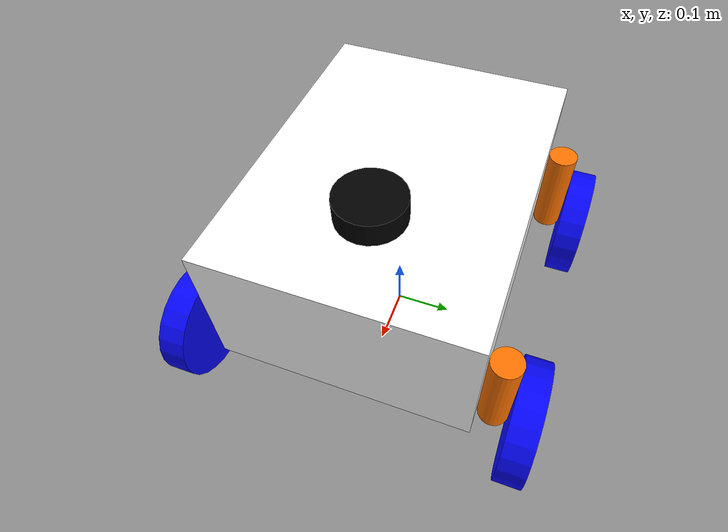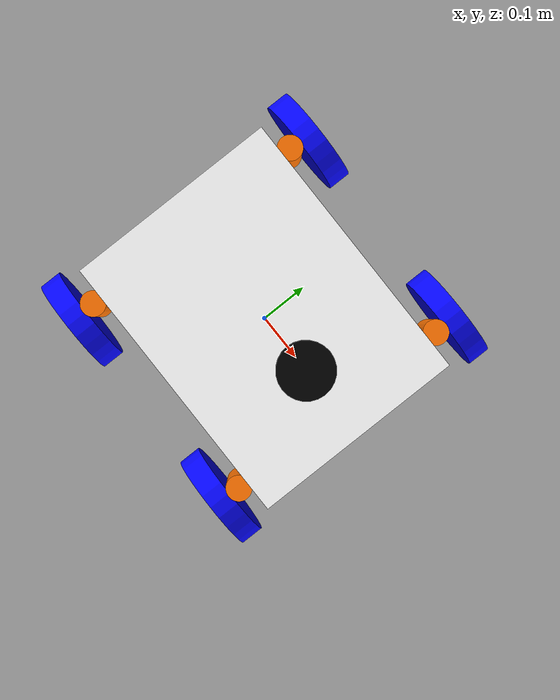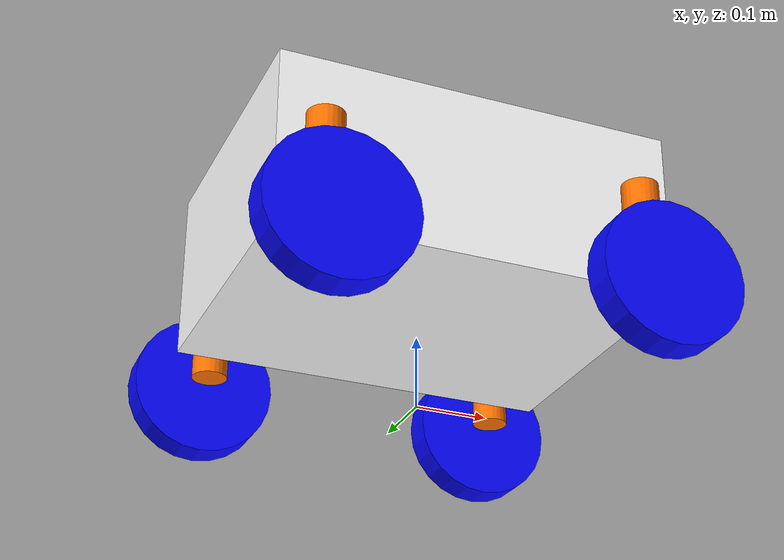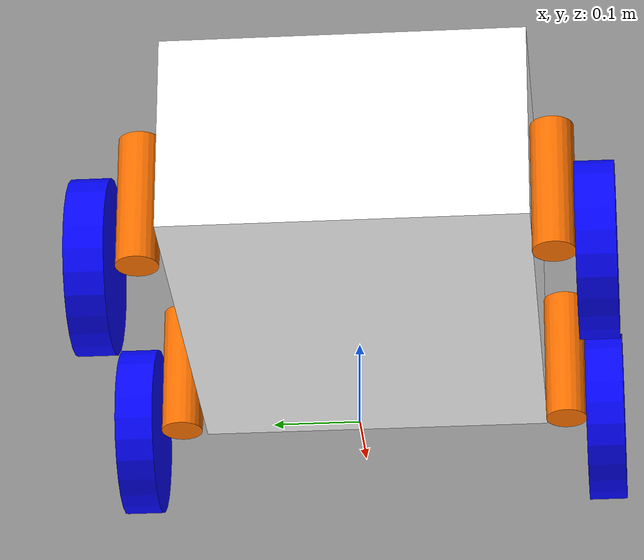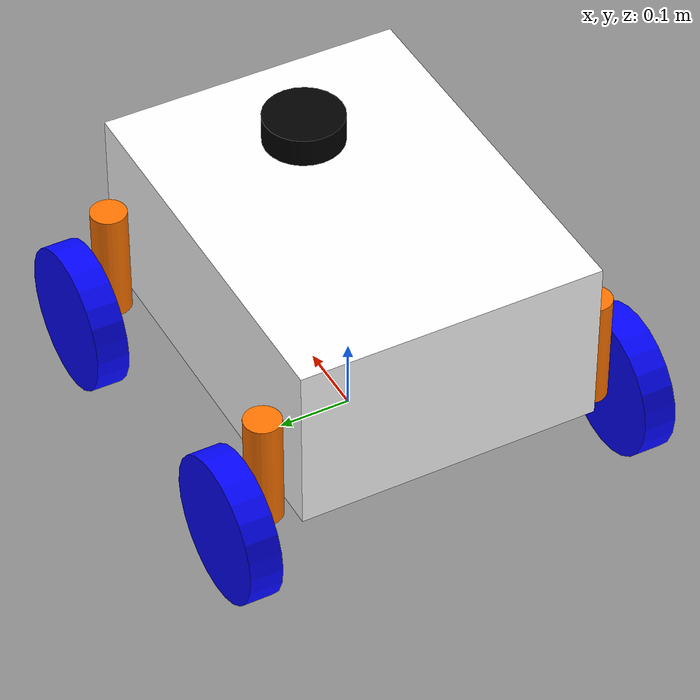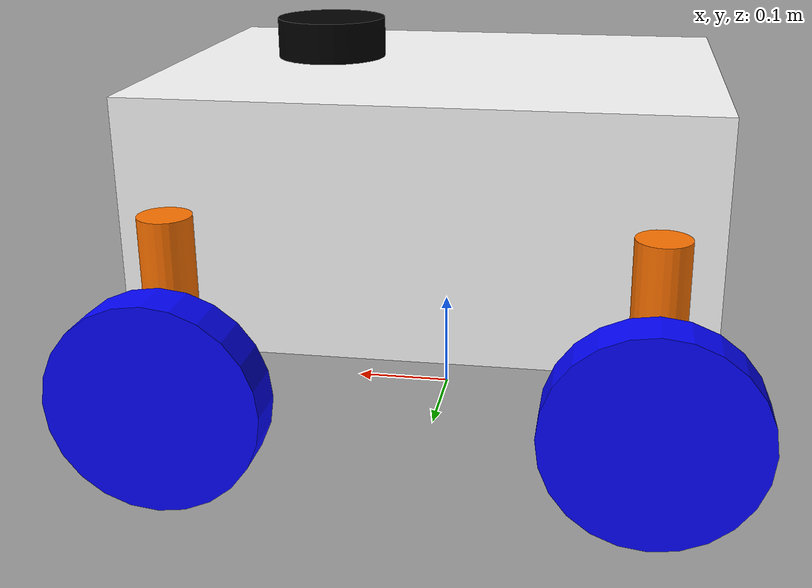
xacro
<?xml version="1.0"?>
<robot name="Farmbeast" xmlns:xacro="http://www.ros.org/wiki/xacro">

  <!-- Farmbeast minimal 4-wheel steering robot for ROS1/Gazebo  -->
  <!-- Self-contained: no external Velodyne or inertial macros    -->

  <xacro:property name="PI_LOCAL" value="3.141592653589793"/>

  <!-- Inertial helper macros -->

  <xacro:macro name="inertial_box" params="mass x y z *origin">
    <inertial>
      <xacro:insert_block name="origin"/>
      <mass value="${mass}"/>
      <inertia
        ixx="${mass * (y*y + z*z) / 12.0}"
        ixy="0.0"
        ixz="0.0"
        iyy="${mass * (x*x + z*z) / 12.0}"
        iyz="0.0"
        izz="${mass * (x*x + y*y) / 12.0}"/>
    </inertial>
  </xacro:macro>

  <xacro:macro name="inertial_cylinder_z" params="mass radius length *origin">
    <inertial>
      <xacro:insert_block name="origin"/>
      <mass value="${mass}"/>
      <inertia
        ixx="${mass * (3.0*radius*radius + length*length) / 12.0}"
        ixy="0.0"
        ixz="0.0"
        iyy="${mass * (3.0*radius*radius + length*length) / 12.0}"
        iyz="0.0"
        izz="${mass * radius*radius / 2.0}"/>
    </inertial>
  </xacro:macro>

  <!-- Materials -->

  <material name="white">
    <color rgba="1.0 1.0 1.0 1.0"/>
  </material>

  <material name="orange">
    <color rgba="1.0 0.45 0.0 1.0"/>
  </material>

  <material name="blue">
    <color rgba="0.02 0.02 1.0 1.0"/>
  </material>

  <material name="black">
    <color rgba="0.0 0.0 0.0 1.0"/>
  </material>

  <!-- Global dimensions -->

  <!-- Chassis -->
  <xacro:property name="chassis_x" value="0.55"/>
  <xacro:property name="chassis_y" value="0.42"/>
  <xacro:property name="chassis_z" value="0.24"/>

  <xacro:property name="chassis_center_z" value="0.24"/>

  <!-- Wheels -->
  <xacro:property name="wheel_radius" value="0.10"/>
  <xacro:property name="wheel_width" value="0.045"/>
  <xacro:property name="wheel_z" value="${wheel_radius}"/>

  <!-- Wheel module x positions -->
  <xacro:property name="wheel_x_front" value="0.22"/>
  <xacro:property name="wheel_x_back" value="-0.22"/>

  <!-- Steering / orange vertical cylinder -->
  <xacro:property name="steer_radius" value="0.025"/>
  <xacro:property name="steer_length" value="0.16"/>

  <!-- Body half width = 0.42 / 2 = 0.21.
       Steering center sits just outside the body:
       0.21 + 0.025 = 0.235.
       This makes the orange cylinder touch the body side. -->
  <xacro:property name="steer_y_left" value="0.235"/>
  <xacro:property name="steer_y_right" value="-0.235"/>

  <!-- Wheel center offset from orange steering axis.
       steer_radius + wheel_width/2 + small gap
       = 0.025 + 0.0225 + 0.005 = 0.0525. -->
  <xacro:property name="wheel_gap" value="0.00"/>
  <xacro:property name="wheel_from_steer_y" value="${steer_radius + wheel_width/2.0 + wheel_gap}"/>

  <!-- Root frame / base link -->

  <link name="base_link">
    <inertial>
      <origin xyz="0 0 0" rpy="0 0 0"/>
      <mass value="0.001"/>
      <inertia
        ixx="1e-6" ixy="0.0" ixz="0.0"
        iyy="1e-6" iyz="0.0"
        izz="1e-6"/>
    </inertial>
  </link>

  <!-- Chassis -->

  <joint name="chassis_joint" type="fixed">
    <parent link="base_link"/>
    <child link="chassis"/>
    <origin xyz="0 0 ${chassis_center_z}" rpy="0 0 0"/>
  </joint>

  <link name="chassis">
    <visual>
      <origin xyz="0 0 0" rpy="0 0 0"/>
      <geometry>
        <box size="${chassis_x} ${chassis_y} ${chassis_z}"/>
      </geometry>
      <material name="white"/>
    </visual>

    <collision>
      <origin xyz="0 0 0" rpy="0 0 0"/>
      <geometry>
        <box size="${chassis_x} ${chassis_y} ${chassis_z}"/>
      </geometry>
    </collision>

    <xacro:inertial_box mass="5.0" x="${chassis_x}" y="${chassis_y}" z="${chassis_z}">
      <origin xyz="0 0 0" rpy="0 0 0"/>
    </xacro:inertial_box>
  </link>

  <gazebo reference="chassis">
    <material>Gazebo/White</material>
  </gazebo>

  <!-- Steering + wheel module     -->

  <xacro:macro name="steer_wheel" params="prefix x_pos steer_y side_sign">

    <!-- Steering joint: rotates orange vertical knuckle around Z. -->
    <joint name="${prefix}_z_axis_joint" type="revolute">
      <parent link="base_link"/>
      <child link="${prefix}_z_axis"/>
      <origin xyz="${x_pos} ${steer_y} ${wheel_z}" rpy="0 0 0"/>
      <axis xyz="0 0 1"/>
      <limit lower="-1.57" upper="1.57" effort="20.0" velocity="5.0"/>
      <dynamics damping="0.05" friction="0.02"/>
    </joint>

    <!-- Orange vertical part.
         Link frame is at wheel axle height.
         Visual cylinder is shifted upward by steer_length/2,
         so its bottom starts at wheel_z and extends upward. -->
    <link name="${prefix}_z_axis">
      <visual>
        <origin xyz="0 0 ${steer_length/2.0}" rpy="0 0 0"/>
        <geometry>
          <cylinder radius="${steer_radius}" length="${steer_length}"/>
        </geometry>
        <material name="orange"/>
      </visual>

      <collision>
        <origin xyz="0 0 ${steer_length/2.0}" rpy="0 0 0"/>
        <geometry>
          <cylinder radius="${steer_radius}" length="${steer_length}"/>
        </geometry>
      </collision>

      <xacro:inertial_cylinder_z mass="0.15" radius="${steer_radius}" length="${steer_length}">
        <origin xyz="0 0 ${steer_length/2.0}" rpy="0 0 0"/>
      </xacro:inertial_cylinder_z>
    </link>

    <gazebo reference="${prefix}_z_axis">
      <material>Gazebo/Orange</material>
    </gazebo>

    <transmission name="${prefix}_z_axis_trans">
      <type>transmission_interface/SimpleTransmission</type>
      <joint name="${prefix}_z_axis_joint">
        <hardwareInterface>hardware_interface/PositionJointInterface</hardwareInterface>
      </joint>
      <actuator name="${prefix}_z_axis_actuator">
        <mechanicalReduction>1</mechanicalReduction>
      </actuator>
    </transmission>

    <joint name="${prefix}_wheel_joint" type="continuous">
      <parent link="${prefix}_z_axis"/>
      <child link="${prefix}_wheel"/>
      <origin xyz="0 ${side_sign * wheel_from_steer_y} 0" rpy="0 0 0"/>
      <axis xyz="0 1 0"/>
      <dynamics damping="0.02" friction="0.01"/>
    </joint>

    <link name="${prefix}_wheel">
      <visual>
        <origin xyz="0 0 0" rpy="${PI_LOCAL/2.0} 0 0"/>
        <geometry>
          <cylinder radius="${wheel_radius}" length="${wheel_width}"/>
        </geometry>
        <material name="blue"/>
      </visual>

      <collision>
        <origin xyz="0 0 0" rpy="${PI_LOCAL/2.0} 0 0"/>
        <geometry>
          <cylinder radius="${wheel_radius}" length="${wheel_width}"/>
        </geometry>
      </collision>

      <xacro:inertial_cylinder_z mass="0.25" radius="${wheel_radius}" length="${wheel_width}">
        <origin xyz="0 0 0" rpy="${PI_LOCAL/2.0} 0 0"/>
      </xacro:inertial_cylinder_z>
    </link>

    <gazebo reference="${prefix}_wheel">
      <material>Gazebo/Blue</material>
      <mu1>2.0</mu1>
      <mu2>2.0</mu2>
      <kp>1000000.0</kp>
      <kd>10.0</kd>
    </gazebo>

    <transmission name="${prefix}_wheel_trans">
      <type>transmission_interface/SimpleTransmission</type>
      <joint name="${prefix}_wheel_joint">
        <hardwareInterface>hardware_interface/VelocityJointInterface</hardwareInterface>
      </joint>
      <actuator name="${prefix}_wheel_actuator">
        <mechanicalReduction>1</mechanicalReduction>
      </actuator>
    </transmission>

  </xacro:macro>

  <!-- Left side: positive Y.
       Right side: negative Y. -->
  <xacro:steer_wheel prefix="left_front"  x_pos="${wheel_x_front}" steer_y="${steer_y_left}"  side_sign="1"/>
  <xacro:steer_wheel prefix="left_back"   x_pos="${wheel_x_back}"  steer_y="${steer_y_left}"  side_sign="1"/>
  <xacro:steer_wheel prefix="right_front" x_pos="${wheel_x_front}" steer_y="${steer_y_right}" side_sign="-1"/>
  <xacro:steer_wheel prefix="right_back"  x_pos="${wheel_x_back}"  steer_y="${steer_y_right}" side_sign="-1"/>

  <!-- Lidar dummy     -->

  <joint name="lidar_joint" type="fixed">
    <parent link="chassis"/>
    <child link="lidar_link"/>
    <origin xyz="0.12 0 ${chassis_z/2.0 + 0.025}" rpy="0 0 0"/>
  </joint>

  <link name="lidar_link">
    <visual>
      <origin xyz="0 0 0" rpy="0 0 0"/>
      <geometry>
        <cylinder radius="0.055" length="0.04"/>
      </geometry>
      <material name="black"/>
    </visual>

    <collision>
      <origin xyz="0 0 0" rpy="0 0 0"/>
      <geometry>
        <cylinder radius="0.055" length="0.04"/>
      </geometry>
    </collision>

    <xacro:inertial_cylinder_z mass="0.3" radius="0.055" length="0.04">
      <origin xyz="0 0 0" rpy="0 0 0"/>
    </xacro:inertial_cylinder_z>
  </link>

  <gazebo reference="lidar_link">
    <material>Gazebo/DarkGrey</material>
  </gazebo>

  <!-- Gazebo ros_control -->

  <gazebo>
    <plugin name="gazebo_ros_control" filename="libgazebo_ros_control.so">
      <robotNamespace>/farmbeast</robotNamespace>
      <robotSimType>gazebo_ros_control/DefaultRobotHWSim</robotSimType>
    </plugin>
  </gazebo>

</robot>
